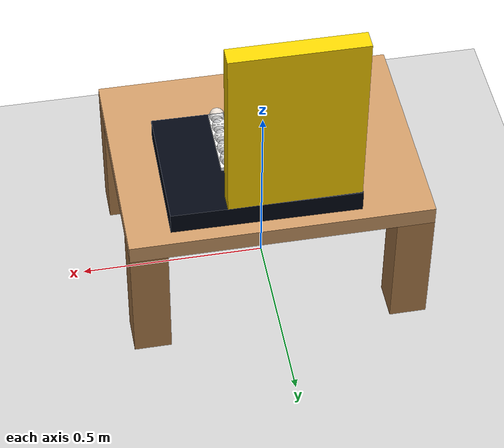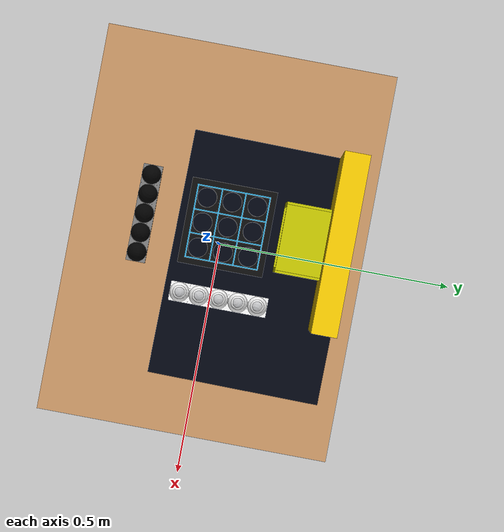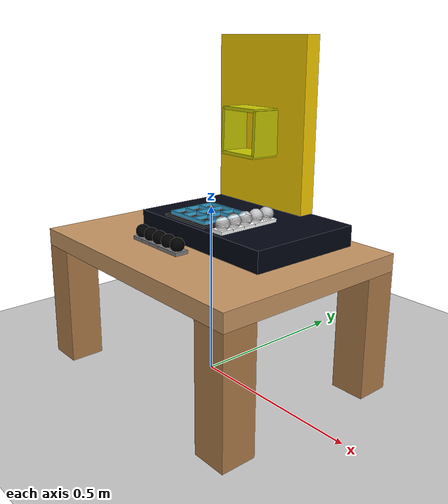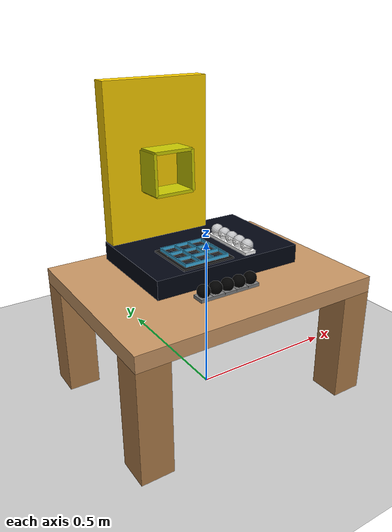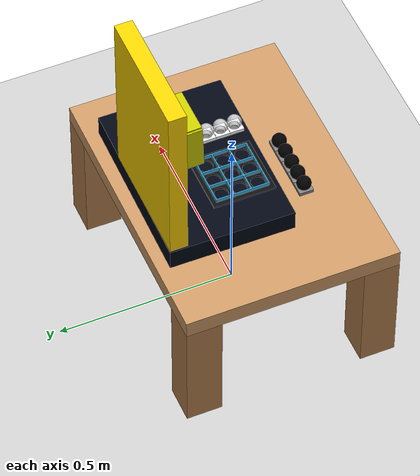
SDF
<sdf version="1.10">
 <world name="WORKINGPROTO">
  <physics name="1ms" type="ignored">
   <max_step_size>0.001</max_step_size>
   <real_time_factor>1</real_time_factor>
   <real_time_update_rate>1000</real_time_update_rate>
  </physics>
  <plugin name="gz::sim::systems::Physics" filename="gz-sim-physics-system"/>
  <plugin name="gz::sim::systems::UserCommands" filename="gz-sim-user-commands-system"/>
  <plugin name="gz::sim::systems::SceneBroadcaster" filename="gz-sim-scene-broadcaster-system"/>
  <gravity>0 0 -9.8000000000000007</gravity>
  <magnetic_field>5.5644999999999998e-06 2.2875799999999999e-05 -4.2388400000000002e-05</magnetic_field>
  <atmosphere type="adiabatic"/>
  <scene>
   <ambient>0.400000006 0.400000006 0.400000006 1</ambient>
   <background>0.699999988 0.699999988 0.699999988 1</background>
   <shadows>true</shadows>
  </scene>
  <model name="ground_plane">
   <static>true</static>
   <link name="link">
    <collision name="collision">
     <geometry><plane><normal>0 0 1</normal><size>100 100</size></plane></geometry>
     <surface>
      <contact><collide_bitmask>65535</collide_bitmask><ode><mu>100</mu><mu2>50</mu2></ode></contact>
      <friction><ode><mu>100</mu><mu2>50</mu2></ode></friction>
     </surface>
    </collision>
    <visual name="visual">
     <cast_shadows>false</cast_shadows>
     <geometry><plane><normal>0 0 1</normal><size>100 100</size></plane></geometry>
     <material>
      <ambient>0.800000012 0.800000012 0.800000012 1</ambient>
      <diffuse>0.800000012 0.800000012 0.800000012 1</diffuse>
      <specular>0 0 0 1</specular>
     </material>
    </visual>
    <inertial>
     <mass>1</mass>
     <inertia><ixx>1</ixx><ixy>0</ixy><ixz>0</ixz><iyy>1</iyy><iyz>0</iyz><izz>1</izz></inertia>
    </inertial>
   </link>
  </model>
  <model name="study_table">
   <static>true</static>
   <link name="table_link">
    <inertial>
     <mass>50</mass>
     <inertia><ixx>10</ixx><iyy>8</iyy><izz>6</izz><ixy>0</ixy><ixz>0</ixz><iyz>0</iyz></inertia>
    </inertial>
    <visual name="table_top">
     <pose>0 0 0.375 0 0 0</pose>
     <geometry><box><size>0.80000000000000004 0.59999999999999998 0.050000000000000003</size></box></geometry>
     <material>
      <ambient>0.800000012 0.600000024 0.400000006 1</ambient>
      <diffuse>0.800000012 0.600000024 0.400000006 1</diffuse>
     </material>
    </visual>
    <visual name="table_leg1">
     <pose>0.34999999999999998 0.25 0.17499999999999999 0 0 0</pose>
     <geometry><box><size>0.10000000000000001 0.10000000000000001 0.34999999999999998</size></box></geometry>
     <material>
      <ambient>0.699999988 0.5 0.300000012 1</ambient>
      <diffuse>0.699999988 0.5 0.300000012 1</diffuse>
     </material>
    </visual>
    <visual name="table_leg2">
     <pose>-0.34999999999999998 0.25 0.17499999999999999 0 0 0</pose>
     <geometry><box><size>0.10000000000000001 0.10000000000000001 0.34999999999999998</size></box></geometry>
     <material>
      <ambient>0.699999988 0.5 0.300000012 1</ambient>
      <diffuse>0.699999988 0.5 0.300000012 1</diffuse>
     </material>
    </visual>
    <visual name="table_leg3">
     <pose>0.34999999999999998 -0.25 0.17499999999999999 0 0 0</pose>
     <geometry><box><size>0.10000000000000001 0.10000000000000001 0.34999999999999998</size></box></geometry>
     <material>
      <ambient>0.699999988 0.5 0.300000012 1</ambient>
      <diffuse>0.699999988 0.5 0.300000012 1</diffuse>
     </material>
    </visual>
    <visual name="table_leg4">
     <pose>-0.34999999999999998 -0.25 0.17499999999999999 0 0 0</pose>
     <geometry><box><size>0.10000000000000001 0.10000000000000001 0.34999999999999998</size></box></geometry>
     <material>
      <ambient>0.699999988 0.5 0.300000012 1</ambient>
      <diffuse>0.699999988 0.5 0.300000012 1</diffuse>
     </material>
    </visual>
    <collision name="table_collision">
     <pose>0 0 0.375 0 0 0</pose>
     <geometry><box><size>0.80000000000000004 0.59999999999999998 0.050000000000000003</size></box></geometry>
    </collision>
   </link>
  </model>
  <model name="guard_rail">
   <static>true</static>
   <pose>-0.13008174300193787 -0.079355299472808838 0.43519699573516846 0 0 0</pose>
   <link name="rail_link">
    <inertial>
     <mass>10</mass>
     <inertia><ixx>1</ixx><iyy>1</iyy><izz>1</izz><ixy>0</ixy><ixz>0</ixz><iyz>0</iyz></inertia>
    </inertial>
    <visual name="rail_visual">
     <geometry>
      <mesh>
       <scale>0.001 0.001 0.001</scale>
       <uri>file:///home/sukritchopra/ros2_ws/src/jetrover_description/models/jetrover/meshes_1/EXTERNAL_MESHES/GUARD_RAILS6.stl</uri>
      </mesh>
     </geometry>
     <material>
      <ambient>0.235294119 0.70588237 0.90196079 1</ambient>
      <diffuse>0.235294119 0.70588237 0.90196079 1</diffuse>
     </material>
    </visual>
    <collision name="rail_collision">
     <geometry>
      <mesh>
       <scale>0.001 0.001 0.001</scale>
       <uri>file:///home/sukritchopra/ros2_ws/src/jetrover_description/models/jetrover/meshes_1/EXTERNAL_MESHES/GUARD_RAILS6.stl</uri>
      </mesh>
     </geometry>
    </collision>
   </link>
  </model>
  <model name="wall">
   <static>true</static>
   <pose>-0.035567201673984528 0.23947399854660034 0.86184102296829224 0 0 0</pose>
   <link name="wall_link">
    <inertial>
     <mass>20000000</mass>
     <inertia>
      <ixx>1.6699999999999999</ixx>
      <iyy>2.6699999999999999</iyy>
      <izz>1.0700000000000001</izz>
      <ixy>0</ixy>
      <ixz>0</ixz>
      <iyz>0</iyz>
     </inertia>
    </inertial>
    <visual name="wall_base">
     <pose>0 0 -0.14999999999999999 0 0 0</pose>
     <geometry><box><size>0.34999999999999998 0.050000000000000003 0.5</size></box></geometry>
     <material><ambient>1 0.824000001 0 1</ambient><diffuse>1 0.824000001 0 1</diffuse></material>
    </visual>
    <collision name="wall_base_collision">
     <pose>0 0 -0.14999999999999999 0 0 0</pose>
     <geometry><box><size>0.34999999999999998 0.050000000000000003 0.49999999999999978</size></box></geometry>
    </collision>
   </link>
  </model>
  <model name="enclosure_floor">
   <static>true</static>
   <pose>0.18506811559200287 0.086792588233947754 0.42550107836723328 1.5699999781232283 -7.7078375410807797e-06 1.5605699752823248</pose>
   <link name="enclosure_floor_link">
    <inertial>
     <mass>20000000</mass>
     <inertia>
      <ixx>1.6699999999999999</ixx>
      <iyy>2.6699999999999999</iyy>
      <izz>1.0700000000000001</izz>
      <ixy>0</ixy>
      <ixz>0</ixz>
      <iyz>0</iyz>
     </inertia>
    </inertial>
    <visual name="enclosure_floor_base">
     <pose>0 0 -0.14999999999999999 0 0 0</pose>
     <geometry><box><size>0.34999999999999998 0.070000000000000007 0.5</size></box></geometry>
     <material>
      <ambient>0 0.00400000019 0.0149999997 1</ambient>
      <diffuse>0.00400000019 0.0199999996 0.0700000003 1</diffuse>
     </material>
    </visual>
    <collision name="enclosure_floor_base_collision">
     <pose>0 0 -0.14999999999999999 0 0 0</pose>
     <geometry><box><size>0.34999999999999998 0.070000000000000007 0.5</size></box></geometry>
    </collision>
   </link>
  </model>
  <model name="tictactoe_game">
   <static>true</static>
   <pose>-0.12158672511577606 -0.071379348635673523 0.44987404346466064 8.8383403714822537e-08 9.0853607244981192e-07 -0.00040046503761798378</pose>
   <link name="board">
    <inertial>
     <mass>2</mass>
     <inertia>
      <ixx>0.10000000000000001</ixx>
      <iyy>0.10000000000000001</iyy>
      <izz>0.10000000000000001</izz>
      <ixy>0</ixy>
      <ixz>0</ixz>
      <iyz>0</iyz>
     </inertia>
    </inertial>
    <visual name="board_visual">
     <geometry>
      <mesh>
       <scale>0.001 0.001 0.001</scale>
       <uri>file:///home/sukritchopra/ros2_ws/src/jetrover_description/models/jetrover/meshes_1/EXTERNAL_MESHES/tictactoe_board3.stl</uri>
      </mesh>
     </geometry>
     <material>
      <ambient>0.0500000007 0.0500000007 0.0500000007 1</ambient>
      <diffuse>0.0500000007 0.0500000007 0.0500000007 1</diffuse>
     </material>
    </visual>
    <collision name="board_collision">
     <geometry>
      <mesh>
       <scale>0.001 0.001 0.001</scale>
       <uri>file:///home/sukritchopra/ros2_ws/src/jetrover_description/models/jetrover/meshes_1/EXTERNAL_MESHES/tictactoe_board3.stl</uri>
      </mesh>
     </geometry>
    </collision>
   </link>
  </model>
  <model name="o_piece_1">
   <static>false</static>
   <pose>0.048477023055087137 -0.1569246862861842 0.4319529964889306 0.90917302257062205 -0.10954491146416037 0.17106003160644484</pose>
   <link name="o_link">
    <inertial>
     <mass>0.0027000000000000001</mass>
     <inertia>
      <ixx>1.0000000000000001e-05</ixx>
      <iyy>1.0000000000000001e-05</iyy>
      <izz>1.0000000000000001e-05</izz>
      <ixy>0</ixy>
      <ixz>0</ixz>
      <iyz>0</iyz>
     </inertia>
    </inertial>
    <visual name="o_visual">
     <geometry><sphere><radius>0.02</radius></sphere></geometry>
     <material><ambient>0 0 0 1</ambient><diffuse>0 0 0 1</diffuse></material>
    </visual>
    <collision name="o_collision"><geometry><sphere><radius>0.02</radius></sphere></geometry></collision>
   </link>
  </model>
  <model name="o_piece_2">
   <static>false</static>
   <pose>-0.031521891808004937 -0.15650847299183965 0.43195298816259842 -0.21171107232365011 -0.050447040139347171 -0.0024237710372432188</pose>
   <link name="o_link">
    <inertial>
     <mass>0.0027000000000000001</mass>
     <inertia>
      <ixx>1.0000000000000001e-05</ixx>
      <iyy>1.0000000000000001e-05</iyy>
      <izz>1.0000000000000001e-05</izz>
      <ixy>0</ixy>
      <ixz>0</ixz>
      <iyz>0</iyz>
     </inertia>
    </inertial>
    <visual name="o_visual">
     <geometry><sphere><radius>0.02</radius></sphere></geometry>
     <material><ambient>0 0 0 1</ambient><diffuse>0 0 0 1</diffuse></material>
    </visual>
    <collision name="o_collision"><geometry><sphere><radius>0.02</radius></sphere></geometry></collision>
   </link>
  </model>
  <model name="o_piece_3">
   <static>false</static>
   <pose>-0.11152080701616529 -0.15609226013526251 0.43195298753520889 -0.41331588881572268 0.085887367856849112 -0.016823096604616148</pose>
   <link name="o_link">
    <inertial>
     <mass>0.0027000000000000001</mass>
     <inertia>
      <ixx>1.0000000000000001e-05</ixx>
      <iyy>1.0000000000000001e-05</iyy>
      <izz>1.0000000000000001e-05</izz>
      <ixy>0</ixy>
      <ixz>0</ixz>
      <iyz>0</iyz>
     </inertia>
    </inertial>
    <visual name="o_visual">
     <geometry><sphere><radius>0.02</radius></sphere></geometry>
     <material><ambient>0 0 0 1</ambient><diffuse>0 0 0 1</diffuse></material>
    </visual>
    <collision name="o_collision"><geometry><sphere><radius>0.02</radius></sphere></geometry></collision>
   </link>
  </model>
  <model name="o_piece_4">
   <static>false</static>
   <pose>0.0084775701513216811 -0.15671657252175047 0.43195297739461702 -2.2347241315274489 -0.38917469938203736 -2.4055952940571914</pose>
   <link name="o_link">
    <inertial>
     <mass>0.0027000000000000001</mass>
     <inertia>
      <ixx>1.0000000000000001e-05</ixx>
      <iyy>1.0000000000000001e-05</iyy>
      <izz>1.0000000000000001e-05</izz>
      <ixy>0</ixy>
      <ixz>0</ixz>
      <iyz>0</iyz>
     </inertia>
    </inertial>
    <visual name="o_visual">
     <geometry><sphere><radius>0.02</radius></sphere></geometry>
     <material><ambient>0 0 0 1</ambient><diffuse>0 0 0 1</diffuse></material>
    </visual>
    <collision name="o_collision"><geometry><sphere><radius>0.02</radius></sphere></geometry></collision>
   </link>
  </model>
  <model name="o_piece_5">
   <static>false</static>
   <pose>-0.071521349333762654 -0.15630036593101035 0.43195298617629119 -0.38344597114876372 -0.4278211985205787 0.3188859586336254</pose>
   <link name="o_link">
    <inertial>
     <mass>0.0027000000000000001</mass>
     <inertia>
      <ixx>1.0000000000000001e-05</ixx>
      <iyy>1.0000000000000001e-05</iyy>
      <izz>1.0000000000000001e-05</izz>
      <ixy>0</ixy>
      <ixz>0</ixz>
      <iyz>0</iyz>
     </inertia>
    </inertial>
    <visual name="o_visual">
     <geometry><sphere><radius>0.02</radius></sphere></geometry>
     <material><ambient>0 0 0 1</ambient><diffuse>0 0 0 1</diffuse></material>
    </visual>
    <collision name="o_collision"><geometry><sphere><radius>0.02</radius></sphere></geometry></collision>
   </link>
  </model>
  <model name="robot_box">
   <static>true</static>
   <pose>-0.03110777772963047 0.1767670065164566 0.6901090145111084 1.5400000109655501 0 0</pose>
   <link name="box_link">
    <inertial>
     <mass>5</mass>
     <inertia>
      <ixx>0.10000000000000001</ixx>
      <iyy>0.10000000000000001</iyy>
      <izz>0.10000000000000001</izz>
      <ixy>0</ixy>
      <ixz>0</ixz>
      <iyz>0</iyz>
     </inertia>
    </inertial>
    <visual name="front_wall">
     <pose>0.065000000000000002 0 0 0 0 0</pose>
     <geometry><box><size>0.01 0.13 0.105</size></box></geometry>
     <material>
      <ambient>0.800000012 0.800000012 3.00000003e-09 1</ambient>
      <diffuse>0.800000012 0.800000012 3.00000003e-09 1</diffuse>
     </material>
    </visual>
    <collision name="front_wall_collision">
     <pose>0.065000000000000002 0 0 0 0 0</pose>
     <geometry><box><size>0.01 0.13 0.105</size></box></geometry>
    </collision>
    <visual name="back_wall">
     <pose>-0.065000000000000002 0 0 0 0 0</pose>
     <geometry><box><size>0.01 0.13 0.105</size></box></geometry>
     <material>
      <ambient>0.800000012 0.800000012 3.00000003e-09 1</ambient>
      <diffuse>0.800000012 0.800000012 3.00000003e-09 1</diffuse>
     </material>
    </visual>
    <collision name="back_wall_collision">
     <pose>-0.065000000000000002 0 0 0 0 0</pose>
     <geometry><box><size>0.01 0.13 0.105</size></box></geometry>
    </collision>
    <visual name="left_wall">
     <pose>0 0.065000000000000002 0 0 0 0</pose>
     <geometry><box><size>0.13 0.01 0.105</size></box></geometry>
     <material>
      <ambient>0.800000012 0.800000072 3.00000003e-09 1</ambient>
      <diffuse>0.800000012 0.800000012 3.00000003e-09 1</diffuse>
     </material>
    </visual>
    <collision name="left_wall_collision">
     <pose>0 0.065000000000000002 0 0 0 0</pose>
     <geometry><box><size>0.13 0.01 0.105</size></box></geometry>
    </collision>
    <visual name="right_wall">
     <pose>0 -0.065000000000000002 0 0 0 0</pose>
     <geometry><box><size>0.13 0.01 0.105</size></box></geometry>
     <material>
      <ambient>0.800000012 0.800000012 3.00000003e-09 1</ambient>
      <diffuse>0.800000012 0.800000012 3.00000003e-09 1</diffuse>
     </material>
    </visual>
    <collision name="right_wall_collision">
     <pose>0 -0.065000000000000002 0 0 0 0</pose>
     <geometry><box><size>0.13 0.01 0.105</size></box></geometry>
    </collision>
   </link>
  </model>
  <model name="x_piece_1">
   <static>false</static>
   <pose>0.11255631334665128 -0.015397455560964239 0.48468986727328567 0.40613692546623176 0.55527851062477884 -0.19916605485111946</pose>
   <link name="x_link">
    <inertial>
     <mass>0.0027000000000000001</mass>
     <inertia>
      <ixx>1.0000000000000001e-05</ixx>
      <iyy>1.0000000000000001e-05</iyy>
      <izz>1.0000000000000001e-05</izz>
      <ixy>0</ixy>
      <ixz>0</ixz>
      <iyz>0</iyz>
     </inertia>
    </inertial>
    <visual name="x_visual">
     <geometry><sphere><radius>0.02</radius></sphere></geometry>
     <material><ambient>1 1 1 0.800000012</ambient><diffuse>1 1 1 0.800000012</diffuse></material>
    </visual>
    <collision name="x_collision"><geometry><sphere><radius>0.02</radius></sphere></geometry></collision>
   </link>
  </model>
  <model name="x_piece_2">
   <static>false</static>
   <pose>0.11251922308517104 0.0646025325019014 0.48468986483645371 0.30032855034958694 -0.10826247406738705 -0.036885037735986406</pose>
   <link name="x_link">
    <inertial>
     <mass>0.0027000000000000001</mass>
     <inertia>
      <ixx>1.0000000000000001e-05</ixx>
      <iyy>1.0000000000000001e-05</iyy>
      <izz>1.0000000000000001e-05</izz>
      <ixy>0</ixy>
      <ixz>0</ixz>
      <iyz>0</iyz>
     </inertia>
    </inertial>
    <visual name="x_visual">
     <geometry><sphere><radius>0.02</radius></sphere></geometry>
     <material><ambient>1 1 1 0.800000012</ambient><diffuse>1 1 1 0.800000012</diffuse></material>
    </visual>
    <collision name="x_collision"><geometry><sphere><radius>0.02</radius></sphere></geometry></collision>
   </link>
  </model>
  <model name="x_piece_3">
   <static>false</static>
   <pose>0.11250067893889684 0.10460252718903772 0.48468986611432185 -0.0071470975191225104 0.6892577809146494 -0.22332938088805274</pose>
   <link name="x_link">
    <inertial>
     <mass>0.0027000000000000001</mass>
     <inertia>
      <ixx>1.0000000000000001e-05</ixx>
      <iyy>1.0000000000000001e-05</iyy>
      <izz>1.0000000000000001e-05</izz>
      <ixy>0</ixy>
      <ixz>0</ixz>
      <iyz>0</iyz>
     </inertia>
    </inertial>
    <visual name="x_visual">
     <geometry><sphere><radius>0.02</radius></sphere></geometry>
     <material><ambient>1 1 1 0.800000012</ambient><diffuse>1 1 1 0.800000012</diffuse></material>
    </visual>
    <collision name="x_collision"><geometry><sphere><radius>0.02</radius></sphere></geometry></collision>
   </link>
  </model>
  <model name="x_piece_4">
   <static>false</static>
   <pose>0.11257485620786739 -0.05539745074879842 0.48468986775543682 0.3074225252972736 -0.15017594513445784 0.43842892839281877</pose>
   <link name="x_link">
    <inertial>
     <mass>0.0027000000000000001</mass>
     <inertia>
      <ixx>1.0000000000000001e-05</ixx>
      <iyy>1.0000000000000001e-05</iyy>
      <izz>1.0000000000000001e-05</izz>
      <ixy>0</ixy>
      <ixz>0</ixz>
      <iyz>0</iyz>
     </inertia>
    </inertial>
    <visual name="x_visual">
     <geometry><sphere><radius>0.02</radius></sphere></geometry>
     <material><ambient>1 1 1 0.800000012</ambient><diffuse>1 1 1 0.800000012</diffuse></material>
    </visual>
    <collision name="x_collision"><geometry><sphere><radius>0.02</radius></sphere></geometry></collision>
   </link>
  </model>
  <model name="x_piece_5">
   <static>false</static>
   <pose>0.11253777035635687 0.024602537801421992 0.48468986307657852 -0.15917647135366086 0.26283156698727234 0.092249374957451544</pose>
   <link name="x_link">
    <inertial>
     <mass>0.0027000000000000001</mass>
     <inertia>
      <ixx>1.0000000000000001e-05</ixx>
      <iyy>1.0000000000000001e-05</iyy>
      <izz>1.0000000000000001e-05</izz>
      <ixy>0</ixy>
      <ixz>0</ixz>
      <iyz>0</iyz>
     </inertia>
    </inertial>
    <visual name="x_visual">
     <geometry><sphere><radius>0.02</radius></sphere></geometry>
     <material><ambient>1 1 1 0.800000012</ambient><diffuse>1 1 1 0.800000012</diffuse></material>
    </visual>
    <collision name="x_collision"><geometry><sphere><radius>0.02</radius></sphere></geometry></collision>
   </link>
  </model>
  <model name="ball_store_grey">
   <static>true</static>
   <pose>0.068580798804759979 -0.1370290070772171 0.40764310956001282 0 0 3.1363899998849982</pose>
   <link name="ball_store_link">
    <inertial>
     <mass>1</mass>
     <inertia>
      <ixx>0.10000000000000001</ixx>
      <iyy>0.10000000000000001</iyy>
      <izz>0.10000000000000001</izz>
      <ixy>0</ixy>
      <ixz>0</ixz>
      <iyz>0</iyz>
     </inertia>
    </inertial>
    <visual name="ball_store_visual">
     <geometry>
      <mesh>
       <scale>0.001 0.001 0.001</scale>
       <uri>file:///home/sukritchopra/ros2_ws/src/jetrover_description/models/jetrover/meshes_1/EXTERNAL_MESHES/BALLSTORE2.stl</uri>
      </mesh>
     </geometry>
     <material><ambient>0.5 0.5 0.5 1</ambient><diffuse>0.5 0.5 0.5 1</diffuse></material>
    </visual>
    <collision name="ball_store_collision">
     <geometry>
      <mesh>
       <scale>0.001 0.001 0.001</scale>
       <uri>file:///home/sukritchopra/ros2_ws/src/jetrover_description/models/jetrover/meshes_1/EXTERNAL_MESHES/BALLSTORE2.stl</uri>
      </mesh>
     </geometry>
    </collision>
   </link>
  </model>
  <model name="ball_store_white">
   <static>true</static>
   <pose>0.13258412480354309 -0.075388170778751373 0.46037998795509338 0 0 1.5712599421281468</pose>
   <link name="ball_store_link">
    <inertial>
     <mass>1</mass>
     <inertia>
      <ixx>0.10000000000000001</ixx>
      <iyy>0.10000000000000001</iyy>
      <izz>0.10000000000000001</izz>
      <ixy>0</ixy>
      <ixz>0</ixz>
      <iyz>0</iyz>
     </inertia>
    </inertial>
    <visual name="ball_store_visual">
     <geometry>
      <mesh>
       <scale>0.001 0.001 0.001</scale>
       <uri>file:///home/sukritchopra/ros2_ws/src/jetrover_description/models/jetrover/meshes_1/EXTERNAL_MESHES/BALLSTORE2.stl</uri>
      </mesh>
     </geometry>
     <material><ambient>1 1 1 1</ambient><diffuse>1 1 1 1</diffuse></material>
    </visual>
    <collision name="ball_store_collision">
     <geometry>
      <mesh>
       <scale>0.001 0.001 0.001</scale>
       <uri>file:///home/sukritchopra/ros2_ws/src/jetrover_description/models/jetrover/meshes_1/EXTERNAL_MESHES/BALLSTORE2.stl</uri>
      </mesh>
     </geometry>
    </collision>
   </link>
  </model>
  <light name="sun" type="directional">
   <pose>0 0 10 0 0 0</pose>
   <intensity>1</intensity>
   <direction>-0.5 0.10000000000000001 -0.90000000000000002</direction>
   <diffuse>0.800000012 0.800000012 0.800000012 1</diffuse>
   <specular>0.200000003 0.200000003 0.200000003 1</specular>
   <attenuation>
    <range>1000</range>
    <linear>0.0099999997764825821</linear>
    <constant>0.89999997615814209</constant>
    <quadratic>0.0010000000474974513</quadratic>
   </attenuation>
   <spot><inner_angle>0</inner_angle><outer_angle>0</outer_angle><falloff>0</falloff></spot>
  </light>
 </world>
</sdf>
